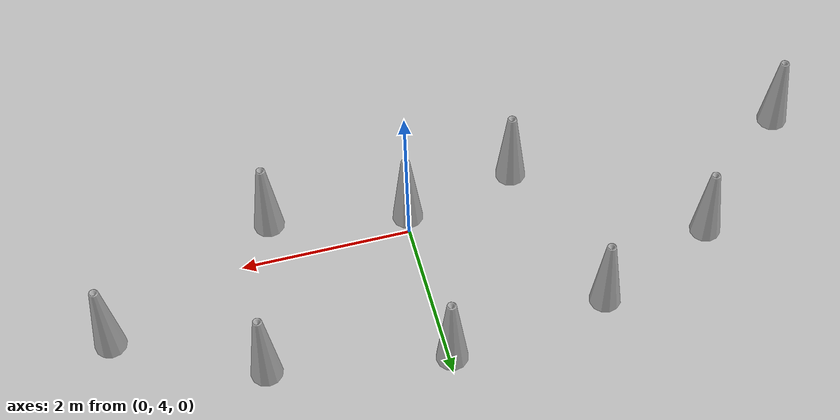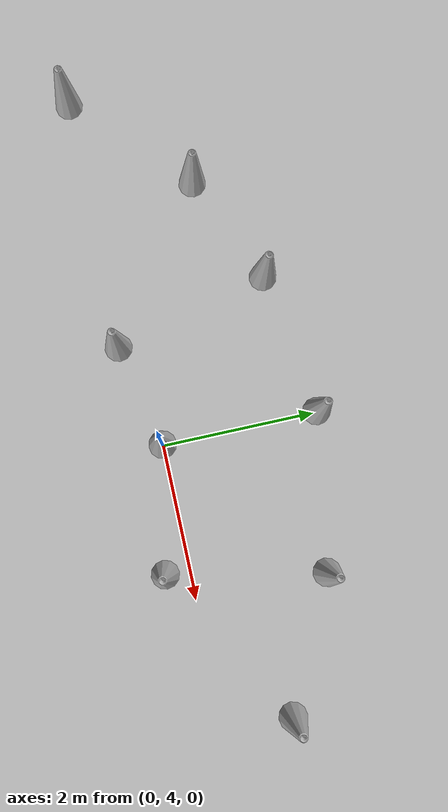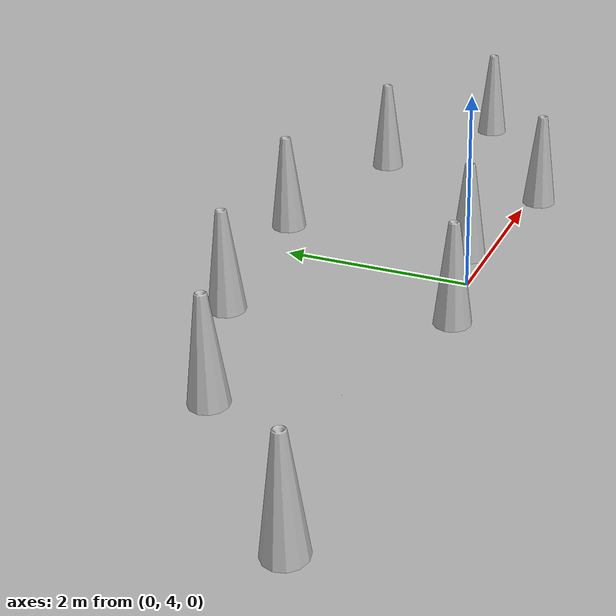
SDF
<sdf version="1.7">
 <world name="default">
  <model name="ground_plane">
   <static>1</static>
   <link name="link">
    <collision name="collision">
     <geometry><plane><normal>0 0 1</normal><size>100 100</size></plane></geometry>
     <surface><friction><ode><mu>100</mu><mu2>50</mu2></ode></friction></surface>
    </collision>
    <visual name="visual">
     <cast_shadows>0</cast_shadows>
     <geometry><plane><normal>0 0 1</normal><size>100 100</size></plane></geometry>
     <material>
      <script><uri>file://media/materials/scripts/gazebo.material</uri><name>Gazebo/Grey</name></script>
     </material>
    </visual>
    <velocity_decay><linear>0</linear><angular>0</angular></velocity_decay>
   </link>
  </model>
  <model name="Construction Cone_0">
   <link name="link">
    <collision name="collision">
     <geometry>
      <mesh><scale>10 10 10</scale><uri>model://construction_cone/meshes/construction_cone.dae</uri></mesh>
     </geometry>
    </collision>
    <visual name="visual">
     <geometry>
      <mesh><scale>10 10 10</scale><uri>model://construction_cone/meshes/construction_cone.dae</uri></mesh>
     </geometry>
    </visual>
    <velocity_decay><linear>0</linear><angular>0</angular></velocity_decay>
    <inertial>
     <inertia><ixx>1</ixx><ixy>0</ixy><ixz>0</ixz><iyy>1</iyy><iyz>0</iyz><izz>1</izz></inertia>
     <mass>1</mass>
    </inertial>
   </link>
   <pose>0.010166 5.99348 0.224663 1.4e-05 -2.8e-05 -0.049649</pose>
   <static>0</static>
  </model>
  <model name="Construction Cone_0_clone">
   <link name="link">
    <collision name="collision">
     <geometry>
      <mesh><scale>10 10 10</scale><uri>model://construction_cone/meshes/construction_cone.dae</uri></mesh>
     </geometry>
    </collision>
    <visual name="visual">
     <geometry>
      <mesh><scale>10 10 10</scale><uri>model://construction_cone/meshes/construction_cone.dae</uri></mesh>
     </geometry>
    </visual>
    <velocity_decay><linear>0</linear><angular>0</angular></velocity_decay>
    <inertial>
     <inertia><ixx>1</ixx><ixy>0</ixy><ixz>0</ixz><iyy>1</iyy><iyz>0</iyz><izz>1</izz></inertia>
     <mass>1</mass>
    </inertial>
   </link>
   <pose>0.009217 4.00334 0.224663 1.4e-05 -2.8e-05 -0.022802</pose>
   <static>0</static>
  </model>
  <model name="Construction Cone_0_clone_clone">
   <link name="link">
    <collision name="collision">
     <geometry>
      <mesh><scale>10 10 10</scale><uri>model://construction_cone/meshes/construction_cone.dae</uri></mesh>
     </geometry>
    </collision>
    <visual name="visual">
     <geometry>
      <mesh><scale>10 10 10</scale><uri>model://construction_cone/meshes/construction_cone.dae</uri></mesh>
     </geometry>
    </visual>
    <velocity_decay><linear>0</linear><angular>0</angular></velocity_decay>
    <inertial>
     <inertia><ixx>1</ixx><ixy>0</ixy><ixz>0</ixz><iyy>1</iyy><iyz>0</iyz><izz>1</izz></inertia>
     <mass>1</mass>
    </inertial>
   </link>
   <pose>-1.32087 3.71076 0.22554 8e-06 -1.6e-05 -0.029294</pose>
   <static>0</static>
  </model>
  <model name="Construction Cone_0_clone_0_clone_clone_4">
   <link name="link">
    <collision name="collision">
     <geometry>
      <mesh><scale>10 10 10</scale><uri>model://construction_cone/meshes/construction_cone.dae</uri></mesh>
     </geometry>
    </collision>
    <visual name="visual">
     <geometry>
      <mesh><scale>10 10 10</scale><uri>model://construction_cone/meshes/construction_cone.dae</uri></mesh>
     </geometry>
    </visual>
    <velocity_decay><linear>0</linear><angular>0</angular></velocity_decay>
    <inertial>
     <inertia><ixx>1</ixx><ixy>0</ixy><ixz>0</ixz><iyy>1</iyy><iyz>0</iyz><izz>1</izz></inertia>
     <mass>1</mass>
    </inertial>
   </link>
   <pose>1.58976 3.70086 0.22554 8e-06 -1.6e-05 -0.029268</pose>
   <static>0</static>
  </model>
  <model name="Construction Cone_0_clone_3_clone_0">
   <link name="link">
    <collision name="collision">
     <geometry>
      <mesh><scale>10 10 10</scale><uri>model://construction_cone/meshes/construction_cone.dae</uri></mesh>
     </geometry>
    </collision>
    <visual name="visual">
     <geometry>
      <mesh><scale>10 10 10</scale><uri>model://construction_cone/meshes/construction_cone.dae</uri></mesh>
     </geometry>
    </visual>
    <velocity_decay><linear>0</linear><angular>0</angular></velocity_decay>
    <inertial>
     <inertia><ixx>1</ixx><ixy>0</ixy><ixz>0</ixz><iyy>1</iyy><iyz>0</iyz><izz>1</izz></inertia>
     <mass>1</mass>
    </inertial>
   </link>
   <pose>-4.65911 3.72651 0.225541 1.6e-05 -2.3e-05 -0.022355</pose>
   <static>0</static>
  </model>
  <model name="Construction Cone_0_clone_3_clone_1">
   <link name="link">
    <collision name="collision">
     <geometry>
      <mesh><scale>10 10 10</scale><uri>model://construction_cone/meshes/construction_cone.dae</uri></mesh>
     </geometry>
    </collision>
    <visual name="visual">
     <geometry>
      <mesh><scale>10 10 10</scale><uri>model://construction_cone/meshes/construction_cone.dae</uri></mesh>
     </geometry>
    </visual>
    <velocity_decay><linear>0</linear><angular>0</angular></velocity_decay>
    <inertial>
     <inertia><ixx>1</ixx><ixy>0</ixy><ixz>0</ixz><iyy>1</iyy><iyz>0</iyz><izz>1</izz></inertia>
     <mass>1</mass>
    </inertial>
   </link>
   <pose>-3.26098 5.09566 0.225525 7.7e-05 -9.7e-05 -0.022257</pose>
   <static>0</static>
  </model>
  <model name="Construction Cone_0_clone_3_clone_2">
   <link name="link">
    <collision name="collision">
     <geometry>
      <mesh><scale>10 10 10</scale><uri>model://construction_cone/meshes/construction_cone.dae</uri></mesh>
     </geometry>
    </collision>
    <visual name="visual">
     <geometry>
      <mesh><scale>10 10 10</scale><uri>model://construction_cone/meshes/construction_cone.dae</uri></mesh>
     </geometry>
    </visual>
    <velocity_decay><linear>0</linear><angular>0</angular></velocity_decay>
    <inertial>
     <inertia><ixx>1</ixx><ixy>0</ixy><ixz>0</ixz><iyy>1</iyy><iyz>0</iyz><izz>1</izz></inertia>
     <mass>1</mass>
    </inertial>
   </link>
   <pose>-1.83249 5.71704 0.224663 1.4e-05 -2.8e-05 -0.022501</pose>
   <static>0</static>
  </model>
  <model name="Construction Cone_0_clone_3_clone_3">
   <link name="link">
    <collision name="collision">
     <geometry>
      <mesh><scale>10 10 10</scale><uri>model://construction_cone/meshes/construction_cone.dae</uri></mesh>
     </geometry>
    </collision>
    <visual name="visual">
     <geometry>
      <mesh><scale>10 10 10</scale><uri>model://construction_cone/meshes/construction_cone.dae</uri></mesh>
     </geometry>
    </visual>
    <velocity_decay><linear>0</linear><angular>0</angular></velocity_decay>
    <inertial>
     <inertia><ixx>1</ixx><ixy>0</ixy><ixz>0</ixz><iyy>1</iyy><iyz>0</iyz><izz>1</izz></inertia>
     <mass>1</mass>
    </inertial>
   </link>
   <pose>1.98767 5.65755 0.224663 1.4e-05 -2.8e-05 -0.022794</pose>
   <static>0</static>
  </model>
  <model name="Construction Cone_0_clone_3_clone_4">
   <link name="link">
    <collision name="collision">
     <geometry>
      <mesh><scale>10 10 10</scale><uri>model://construction_cone/meshes/construction_cone.dae</uri></mesh>
     </geometry>
    </collision>
    <visual name="visual">
     <geometry>
      <mesh><scale>10 10 10</scale><uri>model://construction_cone/meshes/construction_cone.dae</uri></mesh>
     </geometry>
    </visual>
    <velocity_decay><linear>0</linear><angular>0</angular></velocity_decay>
    <inertial>
     <inertia><ixx>1</ixx><ixy>0</ixy><ixz>0</ixz><iyy>1</iyy><iyz>0</iyz><izz>1</izz></inertia>
     <mass>1</mass>
    </inertial>
   </link>
   <pose>3.56519 4.85748 0.22554 1.6e-05 -7e-06 -0.02211</pose>
   <static>0</static>
  </model>
  <model name="mcity">
   <static>1</static>
   <link name="link">
    <collision name="collision">
     <geometry><mesh><scale>0.254 0.254 0.254</scale><uri>model://mcity/meshes/mcity.obj</uri></mesh></geometry>
    </collision>
    <visual name="visual">
     <geometry><mesh><scale>0.254 0.254 0.254</scale><uri>model://mcity/meshes/mcity.obj</uri></mesh></geometry>
    </visual>
   </link>
   <pose>19.891 71.9406 0 0 -0 0</pose>
  </model>
 </world>
</sdf>
